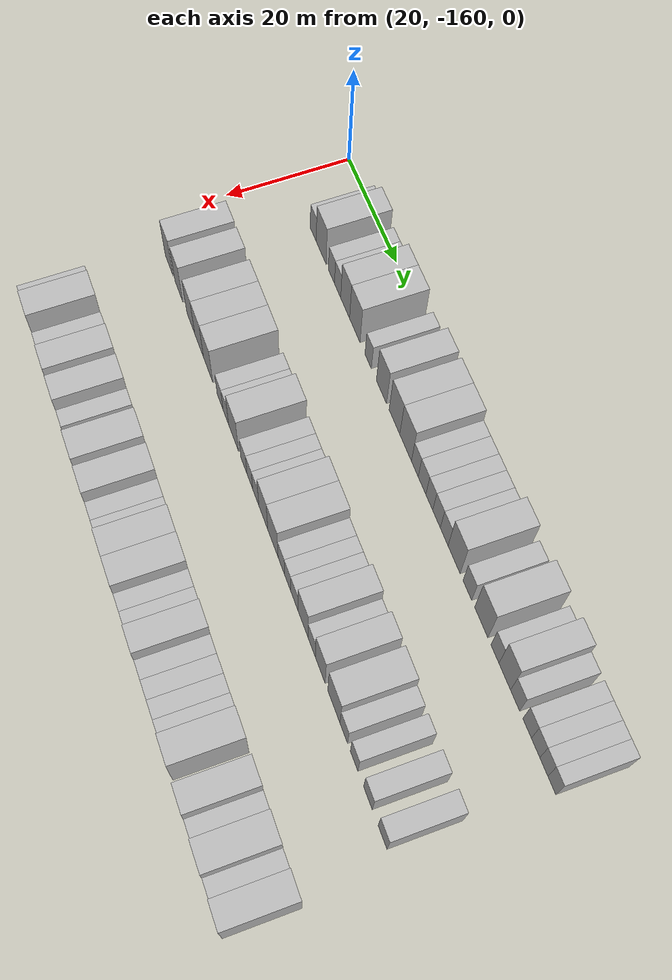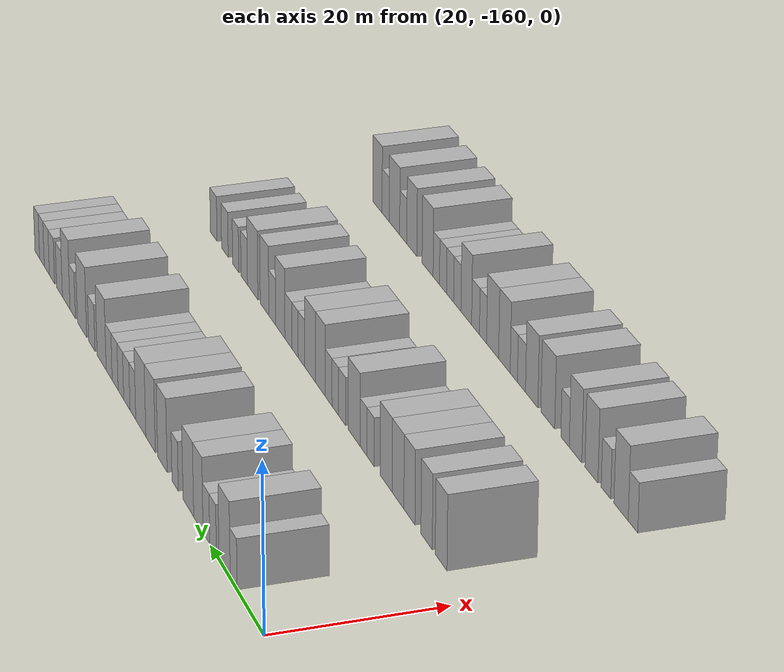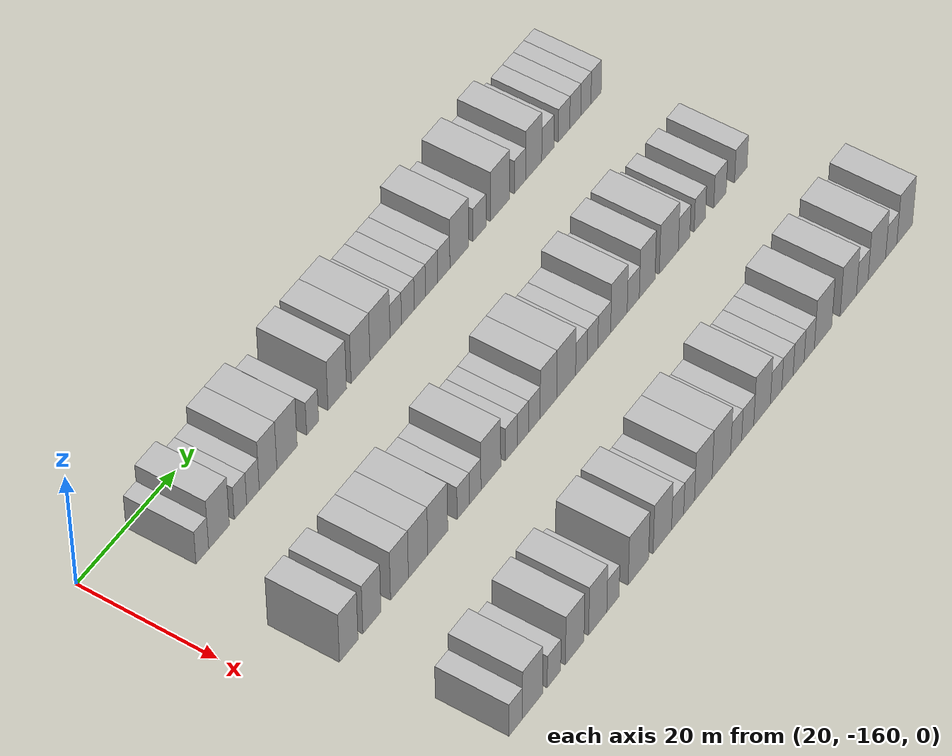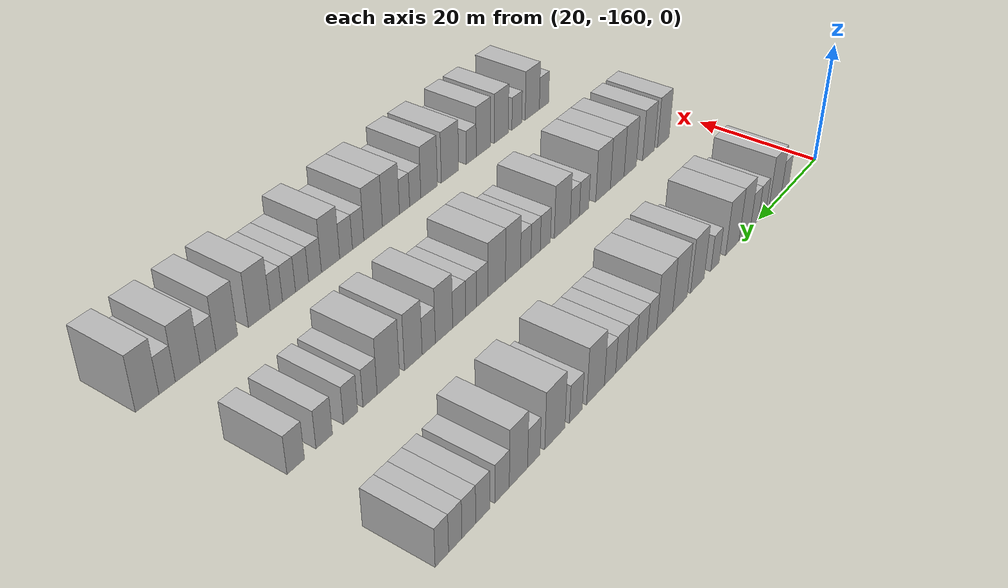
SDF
<sdf version="1.6">
 <world name="default">
  <model name="building_27">
   <static>1</static>
   <pose>25.0000 -148.7729 0 0.000000 0.000000 0.000000</pose>
   <link name="link">
    <pose>0 0 3.00 0 0 0</pose>
    <collision name="collision"><geometry><box><size>10.0000 2.5991 6.0000</size></box></geometry></collision>
    <visual name="visual">
     <cast_shadows>0</cast_shadows>
     <geometry><box><size>10.0000 2.5991 6.0000</size></box></geometry>
     <material>
      <script>
       <uri>model://HANNAS_wall/materials/scripts</uri>
       <uri>model://HANNAS_wall/materials/textures</uri>
       <name>vrc/HANNAS_wall</name>
      </script>
     </material>
    </visual>
   </link>
  </model>
  <model name="building_28">
   <static>1</static>
   <pose>25.0000 -145.3514 0 0.000000 0.000000 0.000000</pose>
   <link name="link">
    <pose>0 0 4.50 0 0 0</pose>
    <collision name="collision"><geometry><box><size>10.0000 4.2440 9.0000</size></box></geometry></collision>
    <visual name="visual">
     <cast_shadows>0</cast_shadows>
     <geometry><box><size>10.0000 4.2440 9.0000</size></box></geometry>
     <material>
      <script>
       <uri>model://HANNAS_wall/materials/scripts</uri>
       <uri>model://HANNAS_wall/materials/textures</uri>
       <name>vrc/HANNAS_wall</name>
      </script>
     </material>
    </visual>
   </link>
  </model>
  <model name="building_29">
   <static>1</static>
   <pose>25.0000 -140.9407 0 0.000000 0.000000 0.000000</pose>
   <link name="link">
    <pose>0 0 3.00 0 0 0</pose>
    <collision name="collision"><geometry><box><size>10.0000 2.5774 6.0000</size></box></geometry></collision>
    <visual name="visual">
     <cast_shadows>0</cast_shadows>
     <geometry><box><size>10.0000 2.5774 6.0000</size></box></geometry>
     <material>
      <script>
       <uri>model://HANNAS_wall/materials/scripts</uri>
       <uri>model://HANNAS_wall/materials/textures</uri>
       <name>vrc/HANNAS_wall</name>
      </script>
     </material>
    </visual>
   </link>
  </model>
  <model name="building_30">
   <static>1</static>
   <pose>25.0000 -138.3449 0 0.000000 0.000000 0.000000</pose>
   <link name="link">
    <pose>0 0 3.00 0 0 0</pose>
    <collision name="collision"><geometry><box><size>10.0000 2.6142 6.0000</size></box></geometry></collision>
    <visual name="visual">
     <cast_shadows>0</cast_shadows>
     <geometry><box><size>10.0000 2.6142 6.0000</size></box></geometry>
     <material>
      <script>
       <uri>model://HANNAS_wall/materials/scripts</uri>
       <uri>model://HANNAS_wall/materials/textures</uri>
       <name>vrc/HANNAS_wall</name>
      </script>
     </material>
    </visual>
   </link>
  </model>
  <model name="building_31">
   <static>1</static>
   <pose>25.0000 -135.1967 0 0.000000 0.000000 0.000000</pose>
   <link name="link">
    <pose>0 0 4.50 0 0 0</pose>
    <collision name="collision"><geometry><box><size>10.0000 3.6823 9.0000</size></box></geometry></collision>
    <visual name="visual">
     <cast_shadows>0</cast_shadows>
     <geometry><box><size>10.0000 3.6823 9.0000</size></box></geometry>
     <material>
      <script>
       <uri>model://HANNAS_wall/materials/scripts</uri>
       <uri>model://HANNAS_wall/materials/textures</uri>
       <name>vrc/HANNAS_wall</name>
      </script>
     </material>
    </visual>
   </link>
  </model>
  <model name="building_32">
   <static>1</static>
   <pose>25.0000 -131.2268 0 0.000000 0.000000 0.000000</pose>
   <link name="link">
    <pose>0 0 4.50 0 0 0</pose>
    <collision name="collision"><geometry><box><size>10.0000 4.2573 9.0000</size></box></geometry></collision>
    <visual name="visual">
     <cast_shadows>0</cast_shadows>
     <geometry><box><size>10.0000 4.2573 9.0000</size></box></geometry>
     <material>
      <script>
       <uri>model://HANNAS_wall/materials/scripts</uri>
       <uri>model://HANNAS_wall/materials/textures</uri>
       <name>vrc/HANNAS_wall</name>
      </script>
     </material>
    </visual>
   </link>
  </model>
  <model name="building_33">
   <static>1</static>
   <pose>25.0000 -125.8252 0 0.000000 0.000000 0.000000</pose>
   <link name="link">
    <pose>0 0 3.00 0 0 0</pose>
    <collision name="collision"><geometry><box><size>10.0000 2.5459 6.0000</size></box></geometry></collision>
    <visual name="visual">
     <cast_shadows>0</cast_shadows>
     <geometry><box><size>10.0000 2.5459 6.0000</size></box></geometry>
     <material>
      <script>
       <uri>model://HANNAS_wall/materials/scripts</uri>
       <uri>model://HANNAS_wall/materials/textures</uri>
       <name>vrc/HANNAS_wall</name>
      </script>
     </material>
    </visual>
   </link>
  </model>
  <model name="building_34">
   <static>1</static>
   <pose>25.0000 -120.5693 0 0.000000 0.000000 0.000000</pose>
   <link name="link">
    <pose>0 0 4.50 0 0 0</pose>
    <collision name="collision"><geometry><box><size>10.0000 3.9659 9.0000</size></box></geometry></collision>
    <visual name="visual">
     <cast_shadows>0</cast_shadows>
     <geometry><box><size>10.0000 3.9659 9.0000</size></box></geometry>
     <material>
      <script>
       <uri>model://HANNAS_wall/materials/scripts</uri>
       <uri>model://HANNAS_wall/materials/textures</uri>
       <name>vrc/HANNAS_wall</name>
      </script>
     </material>
    </visual>
   </link>
  </model>
  <model name="building_35">
   <static>1</static>
   <pose>25.0000 -115.5509 0 0.000000 0.000000 0.000000</pose>
   <link name="link">
    <pose>0 0 4.50 0 0 0</pose>
    <collision name="collision"><geometry><box><size>10.0000 4.0709 9.0000</size></box></geometry></collision>
    <visual name="visual">
     <cast_shadows>0</cast_shadows>
     <geometry><box><size>10.0000 4.0709 9.0000</size></box></geometry>
     <material>
      <script>
       <uri>model://HANNAS_wall/materials/scripts</uri>
       <uri>model://HANNAS_wall/materials/textures</uri>
       <name>vrc/HANNAS_wall</name>
      </script>
     </material>
    </visual>
   </link>
  </model>
  <model name="building_36">
   <static>1</static>
   <pose>25.0000 -111.3265 0 0.000000 0.000000 0.000000</pose>
   <link name="link">
    <pose>0 0 4.50 0 0 0</pose>
    <collision name="collision"><geometry><box><size>10.0000 4.3781 9.0000</size></box></geometry></collision>
    <visual name="visual">
     <cast_shadows>0</cast_shadows>
     <geometry><box><size>10.0000 4.3781 9.0000</size></box></geometry>
     <material>
      <script>
       <uri>model://HANNAS_wall/materials/scripts</uri>
       <uri>model://HANNAS_wall/materials/textures</uri>
       <name>vrc/HANNAS_wall</name>
      </script>
     </material>
    </visual>
   </link>
  </model>
  <model name="building_37">
   <static>1</static>
   <pose>25.0000 -107.8846 0 0.000000 0.000000 0.000000</pose>
   <link name="link">
    <pose>0 0 3.00 0 0 0</pose>
    <collision name="collision"><geometry><box><size>10.0000 2.5057 6.0000</size></box></geometry></collision>
    <visual name="visual">
     <cast_shadows>0</cast_shadows>
     <geometry><box><size>10.0000 2.5057 6.0000</size></box></geometry>
     <material>
      <script>
       <uri>model://HANNAS_wall/materials/scripts</uri>
       <uri>model://HANNAS_wall/materials/textures</uri>
       <name>vrc/HANNAS_wall</name>
      </script>
     </material>
    </visual>
   </link>
  </model>
  <model name="building_38">
   <static>1</static>
   <pose>25.0000 -105.2262 0 0.000000 0.000000 0.000000</pose>
   <link name="link">
    <pose>0 0 3.00 0 0 0</pose>
    <collision name="collision"><geometry><box><size>10.0000 2.8111 6.0000</size></box></geometry></collision>
    <visual name="visual">
     <cast_shadows>0</cast_shadows>
     <geometry><box><size>10.0000 2.8111 6.0000</size></box></geometry>
     <material>
      <script>
       <uri>model://HANNAS_wall/materials/scripts</uri>
       <uri>model://HANNAS_wall/materials/textures</uri>
       <name>vrc/HANNAS_wall</name>
      </script>
     </material>
    </visual>
   </link>
  </model>
  <model name="building_39">
   <static>1</static>
   <pose>25.0000 -102.5758 0 0.000000 0.000000 0.000000</pose>
   <link name="link">
    <pose>0 0 3.00 0 0 0</pose>
    <collision name="collision"><geometry><box><size>10.0000 2.4896 6.0000</size></box></geometry></collision>
    <visual name="visual">
     <cast_shadows>0</cast_shadows>
     <geometry><box><size>10.0000 2.4896 6.0000</size></box></geometry>
     <material>
      <script>
       <uri>model://HANNAS_wall/materials/scripts</uri>
       <uri>model://HANNAS_wall/materials/textures</uri>
       <name>vrc/HANNAS_wall</name>
      </script>
     </material>
    </visual>
   </link>
  </model>
  <model name="building_40">
   <static>1</static>
   <pose>25.0000 -99.9832 0 0.000000 0.000000 0.000000</pose>
   <link name="link">
    <pose>0 0 3.00 0 0 0</pose>
    <collision name="collision"><geometry><box><size>10.0000 2.6957 6.0000</size></box></geometry></collision>
    <visual name="visual">
     <cast_shadows>0</cast_shadows>
     <geometry><box><size>10.0000 2.6957 6.0000</size></box></geometry>
     <material>
      <script>
       <uri>model://HANNAS_wall/materials/scripts</uri>
       <uri>model://HANNAS_wall/materials/textures</uri>
       <name>vrc/HANNAS_wall</name>
      </script>
     </material>
    </visual>
   </link>
  </model>
  <model name="building_41">
   <static>1</static>
   <pose>25.0000 -97.2709 0 0.000000 0.000000 0.000000</pose>
   <link name="link">
    <pose>0 0 3.00 0 0 0</pose>
    <collision name="collision"><geometry><box><size>10.0000 2.7289 6.0000</size></box></geometry></collision>
    <visual name="visual">
     <cast_shadows>0</cast_shadows>
     <geometry><box><size>10.0000 2.7289 6.0000</size></box></geometry>
     <material>
      <script>
       <uri>model://HANNAS_wall/materials/scripts</uri>
       <uri>model://HANNAS_wall/materials/textures</uri>
       <name>vrc/HANNAS_wall</name>
      </script>
     </material>
    </visual>
   </link>
  </model>
  <model name="building_42">
   <static>1</static>
   <pose>25.0000 -93.8040 0 0.000000 0.000000 0.000000</pose>
   <link name="link">
    <pose>0 0 4.50 0 0 0</pose>
    <collision name="collision"><geometry><box><size>10.0000 4.2048 9.0000</size></box></geometry></collision>
    <visual name="visual">
     <cast_shadows>0</cast_shadows>
     <geometry><box><size>10.0000 4.2048 9.0000</size></box></geometry>
     <material>
      <script>
       <uri>model://HANNAS_wall/materials/scripts</uri>
       <uri>model://HANNAS_wall/materials/textures</uri>
       <name>vrc/HANNAS_wall</name>
      </script>
     </material>
    </visual>
   </link>
  </model>
  <model name="building_43">
   <static>1</static>
   <pose>25.0000 -89.2375 0 0.000000 0.000000 0.000000</pose>
   <link name="link">
    <pose>0 0 3.00 0 0 0</pose>
    <collision name="collision"><geometry><box><size>10.0000 2.9280 6.0000</size></box></geometry></collision>
    <visual name="visual">
     <cast_shadows>0</cast_shadows>
     <geometry><box><size>10.0000 2.9280 6.0000</size></box></geometry>
     <material>
      <script>
       <uri>model://HANNAS_wall/materials/scripts</uri>
       <uri>model://HANNAS_wall/materials/textures</uri>
       <name>vrc/HANNAS_wall</name>
      </script>
     </material>
    </visual>
   </link>
  </model>
  <model name="building_44">
   <static>1</static>
   <pose>25.0000 -84.5697 0 0.000000 0.000000 0.000000</pose>
   <link name="link">
    <pose>0 0 4.50 0 0 0</pose>
    <collision name="collision"><geometry><box><size>10.0000 4.4076 9.0000</size></box></geometry></collision>
    <visual name="visual">
     <cast_shadows>0</cast_shadows>
     <geometry><box><size>10.0000 4.4076 9.0000</size></box></geometry>
     <material>
      <script>
       <uri>model://HANNAS_wall/materials/scripts</uri>
       <uri>model://HANNAS_wall/materials/textures</uri>
       <name>vrc/HANNAS_wall</name>
      </script>
     </material>
    </visual>
   </link>
  </model>
  <model name="building_45">
   <static>1</static>
   <pose>25.0000 -80.0610 0 0.000000 0.000000 0.000000</pose>
   <link name="link">
    <pose>0 0 3.00 0 0 0</pose>
    <collision name="collision"><geometry><box><size>10.0000 2.6097 6.0000</size></box></geometry></collision>
    <visual name="visual">
     <cast_shadows>0</cast_shadows>
     <geometry><box><size>10.0000 2.6097 6.0000</size></box></geometry>
     <material>
      <script>
       <uri>model://HANNAS_wall/materials/scripts</uri>
       <uri>model://HANNAS_wall/materials/textures</uri>
       <name>vrc/HANNAS_wall</name>
      </script>
     </material>
    </visual>
   </link>
  </model>
  <model name="building_46">
   <static>1</static>
   <pose>25.0000 -76.8877 0 0.000000 0.000000 0.000000</pose>
   <link name="link">
    <pose>0 0 4.50 0 0 0</pose>
    <collision name="collision"><geometry><box><size>10.0000 3.7369 9.0000</size></box></geometry></collision>
    <visual name="visual">
     <cast_shadows>0</cast_shadows>
     <geometry><box><size>10.0000 3.7369 9.0000</size></box></geometry>
     <material>
      <script>
       <uri>model://HANNAS_wall/materials/scripts</uri>
       <uri>model://HANNAS_wall/materials/textures</uri>
       <name>vrc/HANNAS_wall</name>
      </script>
     </material>
    </visual>
   </link>
  </model>
  <model name="building_47">
   <static>1</static>
   <pose>25.0000 -73.5813 0 0.000000 0.000000 0.000000</pose>
   <link name="link">
    <pose>0 0 3.00 0 0 0</pose>
    <collision name="collision"><geometry><box><size>10.0000 2.8759 6.0000</size></box></geometry></collision>
    <visual name="visual">
     <cast_shadows>0</cast_shadows>
     <geometry><box><size>10.0000 2.8759 6.0000</size></box></geometry>
     <material>
      <script>
       <uri>model://HANNAS_wall/materials/scripts</uri>
       <uri>model://HANNAS_wall/materials/textures</uri>
       <name>vrc/HANNAS_wall</name>
      </script>
     </material>
    </visual>
   </link>
  </model>
  <model name="building_48">
   <static>1</static>
   <pose>25.0000 -69.8153 0 0.000000 0.000000 0.000000</pose>
   <link name="link">
    <pose>0 0 3.00 0 0 0</pose>
    <collision name="collision"><geometry><box><size>10.0000 2.6559 6.0000</size></box></geometry></collision>
    <visual name="visual">
     <cast_shadows>0</cast_shadows>
     <geometry><box><size>10.0000 2.6559 6.0000</size></box></geometry>
     <material>
      <script>
       <uri>model://HANNAS_wall/materials/scripts</uri>
       <uri>model://HANNAS_wall/materials/textures</uri>
       <name>vrc/HANNAS_wall</name>
      </script>
     </material>
    </visual>
   </link>
  </model>
  <model name="building_49">
   <static>1</static>
   <pose>25.0000 -67.2036 0 0.000000 0.000000 0.000000</pose>
   <link name="link">
    <pose>0 0 3.00 0 0 0</pose>
    <collision name="collision"><geometry><box><size>10.0000 2.5675 6.0000</size></box></geometry></collision>
    <visual name="visual">
     <cast_shadows>0</cast_shadows>
     <geometry><box><size>10.0000 2.5675 6.0000</size></box></geometry>
     <material>
      <script>
       <uri>model://HANNAS_wall/materials/scripts</uri>
       <uri>model://HANNAS_wall/materials/textures</uri>
       <name>vrc/HANNAS_wall</name>
      </script>
     </material>
    </visual>
   </link>
  </model>
  <model name="building_50">
   <static>1</static>
   <pose>25.0000 -64.7107 0 0.000000 0.000000 0.000000</pose>
   <link name="link">
    <pose>0 0 3.00 0 0 0</pose>
    <collision name="collision"><geometry><box><size>10.0000 2.4184 6.0000</size></box></geometry></collision>
    <visual name="visual">
     <cast_shadows>0</cast_shadows>
     <geometry><box><size>10.0000 2.4184 6.0000</size></box></geometry>
     <material>
      <script>
       <uri>model://HANNAS_wall/materials/scripts</uri>
       <uri>model://HANNAS_wall/materials/textures</uri>
       <name>vrc/HANNAS_wall</name>
      </script>
     </material>
    </visual>
   </link>
  </model>
  <model name="building_51">
   <static>1</static>
   <pose>25.0000 -62.2946 0 0.000000 0.000000 0.000000</pose>
   <link name="link">
    <pose>0 0 3.00 0 0 0</pose>
    <collision name="collision"><geometry><box><size>10.0000 2.4138 6.0000</size></box></geometry></collision>
    <visual name="visual">
     <cast_shadows>0</cast_shadows>
     <geometry><box><size>10.0000 2.4138 6.0000</size></box></geometry>
     <material>
      <script>
       <uri>model://HANNAS_wall/materials/scripts</uri>
       <uri>model://HANNAS_wall/materials/textures</uri>
       <name>vrc/HANNAS_wall</name>
      </script>
     </material>
    </visual>
   </link>
  </model>
  <model name="building_145">
   <static>1</static>
   <pose>47.0000 -150.9139 0 0.000000 0.000000 0.000000</pose>
   <link name="link">
    <pose>0 0 4.50 0 0 0</pose>
    <collision name="collision"><geometry><box><size>10.0000 3.8288 9.0000</size></box></geometry></collision>
    <visual name="visual">
     <cast_shadows>0</cast_shadows>
     <geometry><box><size>10.0000 3.8288 9.0000</size></box></geometry>
     <material>
      <script>
       <uri>model://HANNAS_wall/materials/scripts</uri>
       <uri>model://HANNAS_wall/materials/textures</uri>
       <name>vrc/HANNAS_wall</name>
      </script>
     </material>
    </visual>
   </link>
  </model>
  <model name="building_146">
   <static>1</static>
   <pose>47.0000 -146.1117 0 0.000000 0.000000 0.000000</pose>
   <link name="link">
    <pose>0 0 4.50 0 0 0</pose>
    <collision name="collision"><geometry><box><size>10.0000 3.7756 9.0000</size></box></geometry></collision>
    <visual name="visual">
     <cast_shadows>0</cast_shadows>
     <geometry><box><size>10.0000 3.7756 9.0000</size></box></geometry>
     <material>
      <script>
       <uri>model://HANNAS_wall/materials/scripts</uri>
       <uri>model://HANNAS_wall/materials/textures</uri>
       <name>vrc/HANNAS_wall</name>
      </script>
     </material>
    </visual>
   </link>
  </model>
  <model name="building_147">
   <static>1</static>
   <pose>47.0000 -140.3429 0 0.000000 0.000000 0.000000</pose>
   <link name="link">
    <pose>0 0 4.50 0 0 0</pose>
    <collision name="collision"><geometry><box><size>10.0000 3.7621 9.0000</size></box></geometry></collision>
    <visual name="visual">
     <cast_shadows>0</cast_shadows>
     <geometry><box><size>10.0000 3.7621 9.0000</size></box></geometry>
     <material>
      <script>
       <uri>model://HANNAS_wall/materials/scripts</uri>
       <uri>model://HANNAS_wall/materials/textures</uri>
       <name>vrc/HANNAS_wall</name>
      </script>
     </material>
    </visual>
   </link>
  </model>
  <model name="building_148">
   <static>1</static>
   <pose>47.0000 -136.4109 0 0.000000 0.000000 0.000000</pose>
   <link name="link">
    <pose>0 0 4.50 0 0 0</pose>
    <collision name="collision"><geometry><box><size>10.0000 4.1020 9.0000</size></box></geometry></collision>
    <visual name="visual">
     <cast_shadows>0</cast_shadows>
     <geometry><box><size>10.0000 4.1020 9.0000</size></box></geometry>
     <material>
      <script>
       <uri>model://HANNAS_wall/materials/scripts</uri>
       <uri>model://HANNAS_wall/materials/textures</uri>
       <name>vrc/HANNAS_wall</name>
      </script>
     </material>
    </visual>
   </link>
  </model>
  <model name="building_149">
   <static>1</static>
   <pose>47.0000 -132.2260 0 0.000000 0.000000 0.000000</pose>
   <link name="link">
    <pose>0 0 4.50 0 0 0</pose>
    <collision name="collision"><geometry><box><size>10.0000 4.2677 9.0000</size></box></geometry></collision>
    <visual name="visual">
     <cast_shadows>0</cast_shadows>
     <geometry><box><size>10.0000 4.2677 9.0000</size></box></geometry>
     <material>
      <script>
       <uri>model://HANNAS_wall/materials/scripts</uri>
       <uri>model://HANNAS_wall/materials/textures</uri>
       <name>vrc/HANNAS_wall</name>
      </script>
     </material>
    </visual>
   </link>
  </model>
  <model name="building_150">
   <static>1</static>
   <pose>47.0000 -126.7721 0 0.000000 0.000000 0.000000</pose>
   <link name="link">
    <pose>0 0 3.00 0 0 0</pose>
    <collision name="collision"><geometry><box><size>10.0000 2.6401 6.0000</size></box></geometry></collision>
    <visual name="visual">
     <cast_shadows>0</cast_shadows>
     <geometry><box><size>10.0000 2.6401 6.0000</size></box></geometry>
     <material>
      <script>
       <uri>model://HANNAS_wall/materials/scripts</uri>
       <uri>model://HANNAS_wall/materials/textures</uri>
       <name>vrc/HANNAS_wall</name>
      </script>
     </material>
    </visual>
   </link>
  </model>
  <model name="building_151">
   <static>1</static>
   <pose>47.0000 -124.1943 0 0.000000 0.000000 0.000000</pose>
   <link name="link">
    <pose>0 0 3.00 0 0 0</pose>
    <collision name="collision"><geometry><box><size>10.0000 2.5154 6.0000</size></box></geometry></collision>
    <visual name="visual">
     <cast_shadows>0</cast_shadows>
     <geometry><box><size>10.0000 2.5154 6.0000</size></box></geometry>
     <material>
      <script>
       <uri>model://HANNAS_wall/materials/scripts</uri>
       <uri>model://HANNAS_wall/materials/textures</uri>
       <name>vrc/HANNAS_wall</name>
      </script>
     </material>
    </visual>
   </link>
  </model>
  <model name="building_152">
   <static>1</static>
   <pose>47.0000 -120.7846 0 0.000000 0.000000 0.000000</pose>
   <link name="link">
    <pose>0 0 4.50 0 0 0</pose>
    <collision name="collision"><geometry><box><size>10.0000 4.3040 9.0000</size></box></geometry></collision>
    <visual name="visual">
     <cast_shadows>0</cast_shadows>
     <geometry><box><size>10.0000 4.3040 9.0000</size></box></geometry>
     <material>
      <script>
       <uri>model://HANNAS_wall/materials/scripts</uri>
       <uri>model://HANNAS_wall/materials/textures</uri>
       <name>vrc/HANNAS_wall</name>
      </script>
     </material>
    </visual>
   </link>
  </model>
  <model name="building_153">
   <static>1</static>
   <pose>47.0000 -116.3013 0 0.000000 0.000000 0.000000</pose>
   <link name="link">
    <pose>0 0 3.00 0 0 0</pose>
    <collision name="collision"><geometry><box><size>10.0000 2.6627 6.0000</size></box></geometry></collision>
    <visual name="visual">
     <cast_shadows>0</cast_shadows>
     <geometry><box><size>10.0000 2.6627 6.0000</size></box></geometry>
     <material>
      <script>
       <uri>model://HANNAS_wall/materials/scripts</uri>
       <uri>model://HANNAS_wall/materials/textures</uri>
       <name>vrc/HANNAS_wall</name>
      </script>
     </material>
    </visual>
   </link>
  </model>
  <model name="building_154">
   <static>1</static>
   <pose>47.0000 -113.7689 0 0.000000 0.000000 0.000000</pose>
   <link name="link">
    <pose>0 0 3.00 0 0 0</pose>
    <collision name="collision"><geometry><box><size>10.0000 2.4022 6.0000</size></box></geometry></collision>
    <visual name="visual">
     <cast_shadows>0</cast_shadows>
     <geometry><box><size>10.0000 2.4022 6.0000</size></box></geometry>
     <material>
      <script>
       <uri>model://HANNAS_wall/materials/scripts</uri>
       <uri>model://HANNAS_wall/materials/textures</uri>
       <name>vrc/HANNAS_wall</name>
      </script>
     </material>
    </visual>
   </link>
  </model>
  <model name="building_155">
   <static>1</static>
   <pose>47.0000 -111.2665 0 0.000000 0.000000 0.000000</pose>
   <link name="link">
    <pose>0 0 3.00 0 0 0</pose>
    <collision name="collision"><geometry><box><size>10.0000 2.6025 6.0000</size></box></geometry></collision>
    <visual name="visual">
     <cast_shadows>0</cast_shadows>
     <geometry><box><size>10.0000 2.6025 6.0000</size></box></geometry>
     <material>
      <script>
       <uri>model://HANNAS_wall/materials/scripts</uri>
       <uri>model://HANNAS_wall/materials/textures</uri>
       <name>vrc/HANNAS_wall</name>
      </script>
     </material>
    </visual>
   </link>
  </model>
  <model name="building_156">
   <static>1</static>
   <pose>47.0000 -108.1121 0 0.000000 0.000000 0.000000</pose>
   <link name="link">
    <pose>0 0 4.50 0 0 0</pose>
    <collision name="collision"><geometry><box><size>10.0000 3.7062 9.0000</size></box></geometry></collision>
    <visual name="visual">
     <cast_shadows>0</cast_shadows>
     <geometry><box><size>10.0000 3.7062 9.0000</size></box></geometry>
     <material>
      <script>
       <uri>model://HANNAS_wall/materials/scripts</uri>
       <uri>model://HANNAS_wall/materials/textures</uri>
       <name>vrc/HANNAS_wall</name>
      </script>
     </material>
    </visual>
   </link>
  </model>
  <model name="building_157">
   <static>1</static>
   <pose>47.0000 -104.1451 0 0.000000 0.000000 0.000000</pose>
   <link name="link">
    <pose>0 0 4.50 0 0 0</pose>
    <collision name="collision"><geometry><box><size>10.0000 4.2277 9.0000</size></box></geometry></collision>
    <visual name="visual">
     <cast_shadows>0</cast_shadows>
     <geometry><box><size>10.0000 4.2277 9.0000</size></box></geometry>
     <material>
      <script>
       <uri>model://HANNAS_wall/materials/scripts</uri>
       <uri>model://HANNAS_wall/materials/textures</uri>
       <name>vrc/HANNAS_wall</name>
      </script>
     </material>
    </visual>
   </link>
  </model>
  <model name="building_158">
   <static>1</static>
   <pose>47.0000 -100.7208 0 0.000000 0.000000 0.000000</pose>
   <link name="link">
    <pose>0 0 3.00 0 0 0</pose>
    <collision name="collision"><geometry><box><size>10.0000 2.6210 6.0000</size></box></geometry></collision>
    <visual name="visual">
     <cast_shadows>0</cast_shadows>
     <geometry><box><size>10.0000 2.6210 6.0000</size></box></geometry>
     <material>
      <script>
       <uri>model://HANNAS_wall/materials/scripts</uri>
       <uri>model://HANNAS_wall/materials/textures</uri>
       <name>vrc/HANNAS_wall</name>
      </script>
     </material>
    </visual>
   </link>
  </model>
  <model name="building_159">
   <static>1</static>
   <pose>47.0000 -98.1982 0 0.000000 0.000000 0.000000</pose>
   <link name="link">
    <pose>0 0 3.00 0 0 0</pose>
    <collision name="collision"><geometry><box><size>10.0000 2.4241 6.0000</size></box></geometry></collision>
    <visual name="visual">
     <cast_shadows>0</cast_shadows>
     <geometry><box><size>10.0000 2.4241 6.0000</size></box></geometry>
     <material>
      <script>
       <uri>model://HANNAS_wall/materials/scripts</uri>
       <uri>model://HANNAS_wall/materials/textures</uri>
       <name>vrc/HANNAS_wall</name>
      </script>
     </material>
    </visual>
   </link>
  </model>
  <model name="building_160">
   <static>1</static>
   <pose>47.0000 -95.5328 0 0.000000 0.000000 0.000000</pose>
   <link name="link">
    <pose>0 0 3.00 0 0 0</pose>
    <collision name="collision"><geometry><box><size>10.0000 2.9067 6.0000</size></box></geometry></collision>
    <visual name="visual">
     <cast_shadows>0</cast_shadows>
     <geometry><box><size>10.0000 2.9067 6.0000</size></box></geometry>
     <material>
      <script>
       <uri>model://HANNAS_wall/materials/scripts</uri>
       <uri>model://HANNAS_wall/materials/textures</uri>
       <name>vrc/HANNAS_wall</name>
      </script>
     </material>
    </visual>
   </link>
  </model>
  <model name="building_161">
   <static>1</static>
   <pose>47.0000 -92.1925 0 0.000000 0.000000 0.000000</pose>
   <link name="link">
    <pose>0 0 4.50 0 0 0</pose>
    <collision name="collision"><geometry><box><size>10.0000 3.7740 9.0000</size></box></geometry></collision>
    <visual name="visual">
     <cast_shadows>0</cast_shadows>
     <geometry><box><size>10.0000 3.7740 9.0000</size></box></geometry>
     <material>
      <script>
       <uri>model://HANNAS_wall/materials/scripts</uri>
       <uri>model://HANNAS_wall/materials/textures</uri>
       <name>vrc/HANNAS_wall</name>
      </script>
     </material>
    </visual>
   </link>
  </model>
  <model name="building_162">
   <static>1</static>
   <pose>47.0000 -88.9091 0 0.000000 0.000000 0.000000</pose>
   <link name="link">
    <pose>0 0 3.00 0 0 0</pose>
    <collision name="collision"><geometry><box><size>10.0000 2.7928 6.0000</size></box></geometry></collision>
    <visual name="visual">
     <cast_shadows>0</cast_shadows>
     <geometry><box><size>10.0000 2.7928 6.0000</size></box></geometry>
     <material>
      <script>
       <uri>model://HANNAS_wall/materials/scripts</uri>
       <uri>model://HANNAS_wall/materials/textures</uri>
       <name>vrc/HANNAS_wall</name>
      </script>
     </material>
    </visual>
   </link>
  </model>
  <model name="building_163">
   <static>1</static>
   <pose>47.0000 -85.6908 0 0.000000 0.000000 0.000000</pose>
   <link name="link">
    <pose>0 0 4.50 0 0 0</pose>
    <collision name="collision"><geometry><box><size>10.0000 3.6438 9.0000</size></box></geometry></collision>
    <visual name="visual">
     <cast_shadows>0</cast_shadows>
     <geometry><box><size>10.0000 3.6438 9.0000</size></box></geometry>
     <material>
      <script>
       <uri>model://HANNAS_wall/materials/scripts</uri>
       <uri>model://HANNAS_wall/materials/textures</uri>
       <name>vrc/HANNAS_wall</name>
      </script>
     </material>
    </visual>
   </link>
  </model>
  <model name="building_164">
   <static>1</static>
   <pose>47.0000 -80.6520 0 0.000000 0.000000 0.000000</pose>
   <link name="link">
    <pose>0 0 4.50 0 0 0</pose>
    <collision name="collision"><geometry><box><size>10.0000 4.4339 9.0000</size></box></geometry></collision>
    <visual name="visual">
     <cast_shadows>0</cast_shadows>
     <geometry><box><size>10.0000 4.4339 9.0000</size></box></geometry>
     <material>
      <script>
       <uri>model://HANNAS_wall/materials/scripts</uri>
       <uri>model://HANNAS_wall/materials/textures</uri>
       <name>vrc/HANNAS_wall</name>
      </script>
     </material>
    </visual>
   </link>
  </model>
  <model name="building_165">
   <static>1</static>
   <pose>47.0000 -77.0713 0 0.000000 0.000000 0.000000</pose>
   <link name="link">
    <pose>0 0 3.00 0 0 0</pose>
    <collision name="collision"><geometry><box><size>10.0000 2.7276 6.0000</size></box></geometry></collision>
    <visual name="visual">
     <cast_shadows>0</cast_shadows>
     <geometry><box><size>10.0000 2.7276 6.0000</size></box></geometry>
     <material>
      <script>
       <uri>model://HANNAS_wall/materials/scripts</uri>
       <uri>model://HANNAS_wall/materials/textures</uri>
       <name>vrc/HANNAS_wall</name>
      </script>
     </material>
    </visual>
   </link>
  </model>
  <model name="building_166">
   <static>1</static>
   <pose>47.0000 -73.3803 0 0.000000 0.000000 0.000000</pose>
   <link name="link">
    <pose>0 0 3.00 0 0 0</pose>
    <collision name="collision"><geometry><box><size>10.0000 2.6543 6.0000</size></box></geometry></collision>
    <visual name="visual">
     <cast_shadows>0</cast_shadows>
     <geometry><box><size>10.0000 2.6543 6.0000</size></box></geometry>
     <material>
      <script>
       <uri>model://HANNAS_wall/materials/scripts</uri>
       <uri>model://HANNAS_wall/materials/textures</uri>
       <name>vrc/HANNAS_wall</name>
      </script>
     </material>
    </visual>
   </link>
  </model>
  <model name="building_167">
   <static>1</static>
   <pose>47.0000 -68.5722 0 0.000000 0.000000 0.000000</pose>
   <link name="link">
    <pose>0 0 3.00 0 0 0</pose>
    <collision name="collision"><geometry><box><size>10.0000 2.9620 6.0000</size></box></geometry></collision>
    <visual name="visual">
     <cast_shadows>0</cast_shadows>
     <geometry><box><size>10.0000 2.9620 6.0000</size></box></geometry>
     <material>
      <script>
       <uri>model://HANNAS_wall/materials/scripts</uri>
       <uri>model://HANNAS_wall/materials/textures</uri>
       <name>vrc/HANNAS_wall</name>
      </script>
     </material>
    </visual>
   </link>
  </model>
  <model name="building_168">
   <static>1</static>
   <pose>47.0000 -63.5912 0 0.000000 0.000000 0.000000</pose>
   <link name="link">
    <pose>0 0 3.00 0 0 0</pose>
    <collision name="collision"><geometry><box><size>10.0000 2.9999 6.0000</size></box></geometry></collision>
    <visual name="visual">
     <cast_shadows>0</cast_shadows>
     <geometry><box><size>10.0000 2.9999 6.0000</size></box></geometry>
     <material>
      <script>
       <uri>model://HANNAS_wall/materials/scripts</uri>
       <uri>model://HANNAS_wall/materials/textures</uri>
       <name>vrc/HANNAS_wall</name>
      </script>
     </material>
    </visual>
   </link>
  </model>
  <model name="building_272">
   <static>1</static>
   <pose>69.0000 -149.6768 0 0.000000 0.000000 0.000000</pose>
   <link name="link">
    <pose>0 0 3.00 0 0 0</pose>
    <collision name="collision"><geometry><box><size>10.0000 2.8334 6.0000</size></box></geometry></collision>
    <visual name="visual">
     <cast_shadows>0</cast_shadows>
     <geometry><box><size>10.0000 2.8334 6.0000</size></box></geometry>
     <material>
      <script>
       <uri>model://HANNAS_wall/materials/scripts</uri>
       <uri>model://HANNAS_wall/materials/textures</uri>
       <name>vrc/HANNAS_wall</name>
      </script>
     </material>
    </visual>
   </link>
  </model>
  <model name="building_273">
   <static>1</static>
   <pose>69.0000 -146.1351 0 0.000000 0.000000 0.000000</pose>
   <link name="link">
    <pose>0 0 4.50 0 0 0</pose>
    <collision name="collision"><geometry><box><size>10.0000 4.2500 9.0000</size></box></geometry></collision>
    <visual name="visual">
     <cast_shadows>0</cast_shadows>
     <geometry><box><size>10.0000 4.2500 9.0000</size></box></geometry>
     <material>
      <script>
       <uri>model://HANNAS_wall/materials/scripts</uri>
       <uri>model://HANNAS_wall/materials/textures</uri>
       <name>vrc/HANNAS_wall</name>
      </script>
     </material>
    </visual>
   </link>
  </model>
  <model name="building_274">
   <static>1</static>
   <pose>69.0000 -141.5683 0 0.000000 0.000000 0.000000</pose>
   <link name="link">
    <pose>0 0 3.00 0 0 0</pose>
    <collision name="collision"><geometry><box><size>10.0000 2.8835 6.0000</size></box></geometry></collision>
    <visual name="visual">
     <cast_shadows>0</cast_shadows>
     <geometry><box><size>10.0000 2.8835 6.0000</size></box></geometry>
     <material>
      <script>
       <uri>model://HANNAS_wall/materials/scripts</uri>
       <uri>model://HANNAS_wall/materials/textures</uri>
       <name>vrc/HANNAS_wall</name>
      </script>
     </material>
    </visual>
   </link>
  </model>
  <model name="building_275">
   <static>1</static>
   <pose>69.0000 -137.1199 0 0.000000 0.000000 0.000000</pose>
   <link name="link">
    <pose>0 0 4.50 0 0 0</pose>
    <collision name="collision"><geometry><box><size>10.0000 4.0133 9.0000</size></box></geometry></collision>
    <visual name="visual">
     <cast_shadows>0</cast_shadows>
     <geometry><box><size>10.0000 4.0133 9.0000</size></box></geometry>
     <material>
      <script>
       <uri>model://HANNAS_wall/materials/scripts</uri>
       <uri>model://HANNAS_wall/materials/textures</uri>
       <name>vrc/HANNAS_wall</name>
      </script>
     </material>
    </visual>
   </link>
  </model>
  <model name="building_276">
   <static>1</static>
   <pose>69.0000 -132.1390 0 0.000000 0.000000 0.000000</pose>
   <link name="link">
    <pose>0 0 4.50 0 0 0</pose>
    <collision name="collision"><geometry><box><size>10.0000 3.9485 9.0000</size></box></geometry></collision>
    <visual name="visual">
     <cast_shadows>0</cast_shadows>
     <geometry><box><size>10.0000 3.9485 9.0000</size></box></geometry>
     <material>
      <script>
       <uri>model://HANNAS_wall/materials/scripts</uri>
       <uri>model://HANNAS_wall/materials/textures</uri>
       <name>vrc/HANNAS_wall</name>
      </script>
     </material>
    </visual>
   </link>
  </model>
  <model name="building_277">
   <static>1</static>
   <pose>69.0000 -128.8210 0 0.000000 0.000000 0.000000</pose>
   <link name="link">
    <pose>0 0 3.00 0 0 0</pose>
    <collision name="collision"><geometry><box><size>10.0000 2.6875 6.0000</size></box></geometry></collision>
    <visual name="visual">
     <cast_shadows>0</cast_shadows>
     <geometry><box><size>10.0000 2.6875 6.0000</size></box></geometry>
     <material>
      <script>
       <uri>model://HANNAS_wall/materials/scripts</uri>
       <uri>model://HANNAS_wall/materials/textures</uri>
       <name>vrc/HANNAS_wall</name>
      </script>
     </material>
    </visual>
   </link>
  </model>
  <model name="building_278">
   <static>1</static>
   <pose>69.0000 -123.2291 0 0.000000 0.000000 0.000000</pose>
   <link name="link">
    <pose>0 0 4.50 0 0 0</pose>
    <collision name="collision"><geometry><box><size>10.0000 4.4963 9.0000</size></box></geometry></collision>
    <visual name="visual">
     <cast_shadows>0</cast_shadows>
     <geometry><box><size>10.0000 4.4963 9.0000</size></box></geometry>
     <material>
      <script>
       <uri>model://HANNAS_wall/materials/scripts</uri>
       <uri>model://HANNAS_wall/materials/textures</uri>
       <name>vrc/HANNAS_wall</name>
      </script>
     </material>
    </visual>
   </link>
  </model>
  <model name="building_279">
   <static>1</static>
   <pose>69.0000 -117.9228 0 0.000000 0.000000 0.000000</pose>
   <link name="link">
    <pose>0 0 4.50 0 0 0</pose>
    <collision name="collision"><geometry><box><size>10.0000 4.1163 9.0000</size></box></geometry></collision>
    <visual name="visual">
     <cast_shadows>0</cast_shadows>
     <geometry><box><size>10.0000 4.1163 9.0000</size></box></geometry>
     <material>
      <script>
       <uri>model://HANNAS_wall/materials/scripts</uri>
       <uri>model://HANNAS_wall/materials/textures</uri>
       <name>vrc/HANNAS_wall</name>
      </script>
     </material>
    </visual>
   </link>
  </model>
  <model name="building_280">
   <static>1</static>
   <pose>69.0000 -114.5023 0 0.000000 0.000000 0.000000</pose>
   <link name="link">
    <pose>0 0 3.00 0 0 0</pose>
    <collision name="collision"><geometry><box><size>10.0000 2.7246 6.0000</size></box></geometry></collision>
    <visual name="visual">
     <cast_shadows>0</cast_shadows>
     <geometry><box><size>10.0000 2.7246 6.0000</size></box></geometry>
     <material>
      <script>
       <uri>model://HANNAS_wall/materials/scripts</uri>
       <uri>model://HANNAS_wall/materials/textures</uri>
       <name>vrc/HANNAS_wall</name>
      </script>
     </material>
    </visual>
   </link>
  </model>
  <model name="building_281">
   <static>1</static>
   <pose>69.0000 -111.9193 0 0.000000 0.000000 0.000000</pose>
   <link name="link">
    <pose>0 0 3.00 0 0 0</pose>
    <collision name="collision"><geometry><box><size>10.0000 2.4415 6.0000</size></box></geometry></collision>
    <visual name="visual">
     <cast_shadows>0</cast_shadows>
     <geometry><box><size>10.0000 2.4415 6.0000</size></box></geometry>
     <material>
      <script>
       <uri>model://HANNAS_wall/materials/scripts</uri>
       <uri>model://HANNAS_wall/materials/textures</uri>
       <name>vrc/HANNAS_wall</name>
      </script>
     </material>
    </visual>
   </link>
  </model>
  <model name="building_282">
   <static>1</static>
   <pose>69.0000 -108.7005 0 0.000000 0.000000 0.000000</pose>
   <link name="link">
    <pose>0 0 4.50 0 0 0</pose>
    <collision name="collision"><geometry><box><size>10.0000 3.9960 9.0000</size></box></geometry></collision>
    <visual name="visual">
     <cast_shadows>0</cast_shadows>
     <geometry><box><size>10.0000 3.9960 9.0000</size></box></geometry>
     <material>
      <script>
       <uri>model://HANNAS_wall/materials/scripts</uri>
       <uri>model://HANNAS_wall/materials/textures</uri>
       <name>vrc/HANNAS_wall</name>
      </script>
     </material>
    </visual>
   </link>
  </model>
  <model name="building_283">
   <static>1</static>
   <pose>69.0000 -104.5944 0 0.000000 0.000000 0.000000</pose>
   <link name="link">
    <pose>0 0 4.50 0 0 0</pose>
    <collision name="collision"><geometry><box><size>10.0000 4.2162 9.0000</size></box></geometry></collision>
    <visual name="visual">
     <cast_shadows>0</cast_shadows>
     <geometry><box><size>10.0000 4.2162 9.0000</size></box></geometry>
     <material>
      <script>
       <uri>model://HANNAS_wall/materials/scripts</uri>
       <uri>model://HANNAS_wall/materials/textures</uri>
       <name>vrc/HANNAS_wall</name>
      </script>
     </material>
    </visual>
   </link>
  </model>
  <model name="building_284">
   <static>1</static>
   <pose>69.0000 -101.2214 0 0.000000 0.000000 0.000000</pose>
   <link name="link">
    <pose>0 0 3.00 0 0 0</pose>
    <collision name="collision"><geometry><box><size>10.0000 2.5299 6.0000</size></box></geometry></collision>
    <visual name="visual">
     <cast_shadows>0</cast_shadows>
     <geometry><box><size>10.0000 2.5299 6.0000</size></box></geometry>
     <material>
      <script>
       <uri>model://HANNAS_wall/materials/scripts</uri>
       <uri>model://HANNAS_wall/materials/textures</uri>
       <name>vrc/HANNAS_wall</name>
      </script>
     </material>
    </visual>
   </link>
  </model>
  <model name="building_285">
   <static>1</static>
   <pose>69.0000 -98.5612 0 0.000000 0.000000 0.000000</pose>
   <link name="link">
    <pose>0 0 3.00 0 0 0</pose>
    <collision name="collision"><geometry><box><size>10.0000 2.7906 6.0000</size></box></geometry></collision>
    <visual name="visual">
     <cast_shadows>0</cast_shadows>
     <geometry><box><size>10.0000 2.7906 6.0000</size></box></geometry>
     <material>
      <script>
       <uri>model://HANNAS_wall/materials/scripts</uri>
       <uri>model://HANNAS_wall/materials/textures</uri>
       <name>vrc/HANNAS_wall</name>
      </script>
     </material>
    </visual>
   </link>
  </model>
  <model name="building_286">
   <static>1</static>
   <pose>69.0000 -95.2312 0 0.000000 0.000000 0.000000</pose>
   <link name="link">
    <pose>0 0 4.50 0 0 0</pose>
    <collision name="collision"><geometry><box><size>10.0000 3.8693 9.0000</size></box></geometry></collision>
    <visual name="visual">
     <cast_shadows>0</cast_shadows>
     <geometry><box><size>10.0000 3.8693 9.0000</size></box></geometry>
     <material>
      <script>
       <uri>model://HANNAS_wall/materials/scripts</uri>
       <uri>model://HANNAS_wall/materials/textures</uri>
       <name>vrc/HANNAS_wall</name>
      </script>
     </material>
    </visual>
   </link>
  </model>
  <model name="building_287">
   <static>1</static>
   <pose>69.0000 -91.9668 0 0.000000 0.000000 0.000000</pose>
   <link name="link">
    <pose>0 0 3.00 0 0 0</pose>
    <collision name="collision"><geometry><box><size>10.0000 2.6596 6.0000</size></box></geometry></collision>
    <visual name="visual">
     <cast_shadows>0</cast_shadows>
     <geometry><box><size>10.0000 2.6596 6.0000</size></box></geometry>
     <material>
      <script>
       <uri>model://HANNAS_wall/materials/scripts</uri>
       <uri>model://HANNAS_wall/materials/textures</uri>
       <name>vrc/HANNAS_wall</name>
      </script>
     </material>
    </visual>
   </link>
  </model>
  <model name="building_288">
   <static>1</static>
   <pose>69.0000 -89.3031 0 0.000000 0.000000 0.000000</pose>
   <link name="link">
    <pose>0 0 3.00 0 0 0</pose>
    <collision name="collision"><geometry><box><size>10.0000 2.6677 6.0000</size></box></geometry></collision>
    <visual name="visual">
     <cast_shadows>0</cast_shadows>
     <geometry><box><size>10.0000 2.6677 6.0000</size></box></geometry>
     <material>
      <script>
       <uri>model://HANNAS_wall/materials/scripts</uri>
       <uri>model://HANNAS_wall/materials/textures</uri>
       <name>vrc/HANNAS_wall</name>
      </script>
     </material>
    </visual>
   </link>
  </model>
  <model name="building_289">
   <static>1</static>
   <pose>69.0000 -86.6728 0 0.000000 0.000000 0.000000</pose>
   <link name="link">
    <pose>0 0 3.00 0 0 0</pose>
    <collision name="collision"><geometry><box><size>10.0000 2.5931 6.0000</size></box></geometry></collision>
    <visual name="visual">
     <cast_shadows>0</cast_shadows>
     <geometry><box><size>10.0000 2.5931 6.0000</size></box></geometry>
     <material>
      <script>
       <uri>model://HANNAS_wall/materials/scripts</uri>
       <uri>model://HANNAS_wall/materials/textures</uri>
       <name>vrc/HANNAS_wall</name>
      </script>
     </material>
    </visual>
   </link>
  </model>
  <model name="building_290">
   <static>1</static>
   <pose>69.0000 -84.1646 0 0.000000 0.000000 0.000000</pose>
   <link name="link">
    <pose>0 0 3.00 0 0 0</pose>
    <collision name="collision"><geometry><box><size>10.0000 2.4232 6.0000</size></box></geometry></collision>
    <visual name="visual">
     <cast_shadows>0</cast_shadows>
     <geometry><box><size>10.0000 2.4232 6.0000</size></box></geometry>
     <material>
      <script>
       <uri>model://HANNAS_wall/materials/scripts</uri>
       <uri>model://HANNAS_wall/materials/textures</uri>
       <name>vrc/HANNAS_wall</name>
      </script>
     </material>
    </visual>
   </link>
  </model>
  <model name="building_291">
   <static>1</static>
   <pose>69.0000 -80.8757 0 0.000000 0.000000 0.000000</pose>
   <link name="link">
    <pose>0 0 4.50 0 0 0</pose>
    <collision name="collision"><geometry><box><size>10.0000 4.1545 9.0000</size></box></geometry></collision>
    <visual name="visual">
     <cast_shadows>0</cast_shadows>
     <geometry><box><size>10.0000 4.1545 9.0000</size></box></geometry>
     <material>
      <script>
       <uri>model://HANNAS_wall/materials/scripts</uri>
       <uri>model://HANNAS_wall/materials/textures</uri>
       <name>vrc/HANNAS_wall</name>
      </script>
     </material>
    </visual>
   </link>
  </model>
  <model name="building_292">
   <static>1</static>
   <pose>69.0000 -74.8276 0 0.000000 0.000000 0.000000</pose>
   <link name="link">
    <pose>0 0 4.50 0 0 0</pose>
    <collision name="collision"><geometry><box><size>10.0000 3.9418 9.0000</size></box></geometry></collision>
    <visual name="visual">
     <cast_shadows>0</cast_shadows>
     <geometry><box><size>10.0000 3.9418 9.0000</size></box></geometry>
     <material>
      <script>
       <uri>model://HANNAS_wall/materials/scripts</uri>
       <uri>model://HANNAS_wall/materials/textures</uri>
       <name>vrc/HANNAS_wall</name>
      </script>
     </material>
    </visual>
   </link>
  </model>
  <model name="building_293">
   <static>1</static>
   <pose>69.0000 -71.4593 0 0.000000 0.000000 0.000000</pose>
   <link name="link">
    <pose>0 0 3.00 0 0 0</pose>
    <collision name="collision"><geometry><box><size>10.0000 2.7948 6.0000</size></box></geometry></collision>
    <visual name="visual">
     <cast_shadows>0</cast_shadows>
     <geometry><box><size>10.0000 2.7948 6.0000</size></box></geometry>
     <material>
      <script>
       <uri>model://HANNAS_wall/materials/scripts</uri>
       <uri>model://HANNAS_wall/materials/textures</uri>
       <name>vrc/HANNAS_wall</name>
      </script>
     </material>
    </visual>
   </link>
  </model>
  <model name="building_294">
   <static>1</static>
   <pose>69.0000 -67.9288 0 0.000000 0.000000 0.000000</pose>
   <link name="link">
    <pose>0 0 4.50 0 0 0</pose>
    <collision name="collision"><geometry><box><size>10.0000 4.2661 9.0000</size></box></geometry></collision>
    <visual name="visual">
     <cast_shadows>0</cast_shadows>
     <geometry><box><size>10.0000 4.2661 9.0000</size></box></geometry>
     <material>
      <script>
       <uri>model://HANNAS_wall/materials/scripts</uri>
       <uri>model://HANNAS_wall/materials/textures</uri>
       <name>vrc/HANNAS_wall</name>
      </script>
     </material>
    </visual>
   </link>
  </model>
  <model name="building_295">
   <static>1</static>
   <pose>69.0000 -64.4215 0 0.000000 0.000000 0.000000</pose>
   <link name="link">
    <pose>0 0 3.00 0 0 0</pose>
    <collision name="collision"><geometry><box><size>10.0000 2.7485 6.0000</size></box></geometry></collision>
    <visual name="visual">
     <cast_shadows>0</cast_shadows>
     <geometry><box><size>10.0000 2.7485 6.0000</size></box></geometry>
     <material>
      <script>
       <uri>model://HANNAS_wall/materials/scripts</uri>
       <uri>model://HANNAS_wall/materials/textures</uri>
       <name>vrc/HANNAS_wall</name>
      </script>
     </material>
    </visual>
   </link>
  </model>
  <model name="building_296">
   <static>1</static>
   <pose>69.0000 -61.1250 0 0.000000 0.000000 0.000000</pose>
   <link name="link">
    <pose>0 0 4.50 0 0 0</pose>
    <collision name="collision"><geometry><box><size>10.0000 3.8444 9.0000</size></box></geometry></collision>
    <visual name="visual">
     <cast_shadows>0</cast_shadows>
     <geometry><box><size>10.0000 3.8444 9.0000</size></box></geometry>
     <material>
      <script>
       <uri>model://HANNAS_wall/materials/scripts</uri>
       <uri>model://HANNAS_wall/materials/textures</uri>
       <name>vrc/HANNAS_wall</name>
      </script>
     </material>
    </visual>
   </link>
  </model>
 </world>
</sdf>
